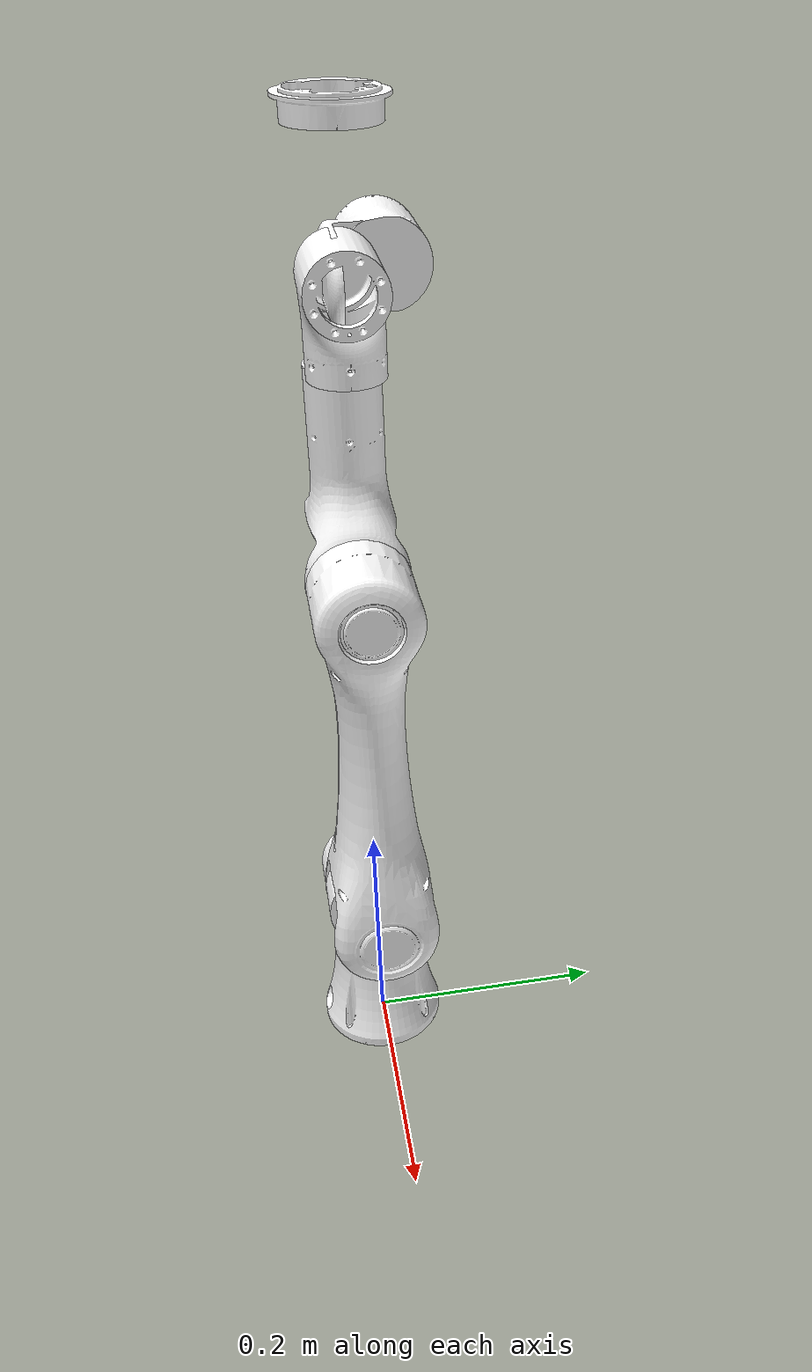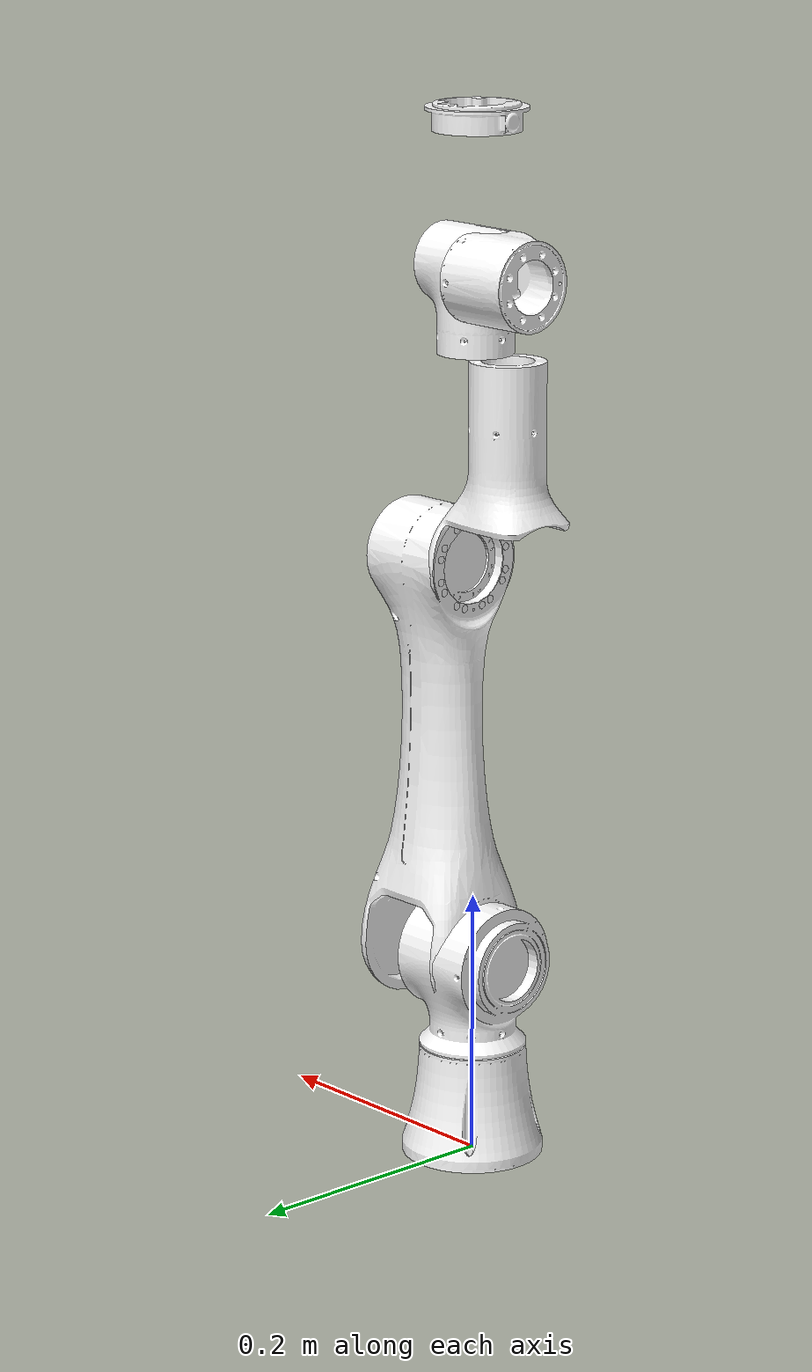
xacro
<?xml version="1.0"?>
<robot xmlns:xacro="http://www.ros.org/wiki/xacro" name="arm620">
    <xacro:arg name="initial_positions_file" default="initial_positions.yaml" />

    <!-- Import arm620 urdf file -->
    <xacro:include filename="$(find robot_description)/urdf/arm620.urdf" />

    <!-- Import control_xacro -->
    <xacro:include filename="arm620.ros2_control.xacro" />

    <xacro:arm620_ros2_control name="FakeSystem" initial_positions_file="$(arg initial_positions_file)"/>

</robot>

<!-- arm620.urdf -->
<robot
  name="arm620">
  <link
    name="base_link">
    <inertial>
      <origin
        xyz="-3.493E-05 1.9321E-08 0.041738"
        rpy="0 0 0" />
      <mass
        value="1.235" />
      <inertia
        ixx="0.00069305"
        ixy="-2.4629E-09"
        ixz="-7.7538E-07"
        iyy="0.00069224"
        iyz="1.1986E-09"
        izz="0.00059207" />
    </inertial>
    <visual>
      <origin
        xyz="0 0 0"
        rpy="0 0 0" />
      <geometry>
        <mesh
          filename="package://robot_description/meshes/arm620/base_link.STL" />
      </geometry>
      <material
        name="">
        <color
          rgba="1 1 1 1" />
      </material>
    </visual>
    <collision>
      <origin
        xyz="0 0 0"
        rpy="0 0 0" />
      <geometry>
        <mesh
          filename="package://robot_description/meshes/arm620/base_link.STL" />
      </geometry>
    </collision>
  </link>
  <link
    name="Link1">
    <inertial>
      <origin
        xyz="0.0083082 -9.0414E-07 0.066279"
        rpy="0 0 0" />
      <mass
        value="1.0225" />
      <inertia
        ixx="0.00033468"
        ixy="-1.0629E-08"
        ixz="-6.9769E-06"
        iyy="0.0002898"
        iyz="-1.0465E-08"
        izz="0.00026359" />
    </inertial>
    <visual>
      <origin
        xyz="0 0 0"
        rpy="0 0 0" />
      <geometry>
        <mesh
          filename="package://robot_description/meshes/arm620/Link1.STL" />
      </geometry>
      <material
        name="">
        <color
          rgba="1 1 1 1" />
      </material>
    </visual>
    <collision>
      <origin
        xyz="0 0 0"
        rpy="0 0 0" />
      <geometry>
        <mesh
          filename="package://robot_description/meshes/arm620/Link1.STL" />
      </geometry>
    </collision>
  </link>
  <joint
    name="joint1"
    type="revolute">
    <origin
      xyz="0 0 0.084"
      rpy="0 0 0" />
    <parent
      link="base_link" />
    <child
      link="Link1" />
    <axis
      xyz="0 0 1" />
    <limit
      lower="-2.967"
      upper="2.967"
      effort="51"
      velocity="3.14" />
  </joint>
  <link
    name="Link2">
    <inertial>
      <origin
        xyz="1.6176E-06 0.19554 -0.0019139"
        rpy="0 0 0" />
      <mass
        value="1.925" />
      <inertia
        ixx="0.0092613"
        ixy="2.9244E-08"
        ixz="-6.7107E-09"
        iyy="0.00075528"
        iyz="-1.5539E-05"
        izz="0.0090845" />
    </inertial>
    <visual>
      <origin
        xyz="0 0 0"
        rpy="0 0 0" />
      <geometry>
        <mesh
          filename="package://robot_description/meshes/arm620/Link2.STL" />
      </geometry>
      <material
        name="">
        <color
          rgba="1 1 1 1" />
      </material>
    </visual>
    <collision>
      <origin
        xyz="0 0 0"
        rpy="0 0 0" />
      <geometry>
        <mesh
          filename="package://robot_description/meshes/arm620/Link2.STL" />
      </geometry>
    </collision>
  </link>
  <joint
    name="joint2"
    type="revolute">
    <origin
      xyz="0 0 0.068718"
      rpy="1.5708 0 -1.5708" />
    <parent
      link="Link1" />
    <child
      link="Link2" />
    <axis
      xyz="0 0 -1" />
    <limit
      lower="-1.5708"
      upper="1.5708"
      effort="51"
      velocity="3.14" />
  </joint>
  <link
    name="Link3">
    <inertial>
      <origin
        xyz="1.8251E-05 -0.073691 0.010704"
        rpy="0 0 0" />
      <mass
        value="0.73" />
      <inertia
        ixx="0.00059318"
        ixy="1.2073E-07"
        ixz="1.9423E-08"
        iyy="0.00015563"
        iyz="-0.00011324"
        izz="0.00055379" />
    </inertial>
    <visual>
      <origin
        xyz="0 0 0"
        rpy="0 0 0" />
      <geometry>
        <mesh
          filename="package://robot_description/meshes/arm620/Link3.STL" />
      </geometry>
      <material
        name="">
        <color
          rgba="1 1 1 1" />
      </material>
    </visual>
    <collision>
      <origin
        xyz="0 0 0"
        rpy="0 0 0" />
      <geometry>
        <mesh
          filename="package://robot_description/meshes/arm620/Link3.STL" />
      </geometry>
    </collision>
  </link>
  <joint
    name="joint3"
    type="revolute">
    <origin
      xyz="0 0.30025 0"
      rpy="-3.1416 0 0" />
    <parent
      link="Link2" />
    <child
      link="Link3" />
    <axis
      xyz="0 0 1" />
    <limit
      lower="-1.5708"
      upper="1.5708"
      effort="51"
      velocity="3.14" />
  </joint>
  <link
    name="Link4">
    <inertial>
      <origin
        xyz="0.0059454 2.5068E-05 0.051809"
        rpy="0 0 0" />
      <mass
        value="0.5174" />
      <inertia
        ixx="0.00010342"
        ixy="-7.9433E-09"
        ixz="-7.9245E-06"
        iyy="0.0001193"
        iyz="-1.6196E-08"
        izz="8.5637E-05" />
    </inertial>
    <visual>
      <origin
        xyz="0 0 0"
        rpy="0 0 0" />
      <geometry>
        <mesh
          filename="package://robot_description/meshes/arm620/Link4.STL" />
      </geometry>
      <material
        name="">
        <color
          rgba="1 1 1 1" />
      </material>
    </visual>
    <collision>
      <origin
        xyz="0 0 0"
        rpy="0 0 0" />
      <geometry>
        <mesh
          filename= "package://robot_description/meshes/arm620/Link4.STL" />
      </geometry>
    </collision>
  </link>
  <joint
    name="joint4"
    type="revolute">
    <origin
      xyz="0 -0.15558 3.5E-05"
      rpy="1.5708 -1.5708 0" />
    <parent
      link="Link3" />
    <child
      link="Link4" />
    <axis
      xyz="0 0 1" />
    <limit
      lower="-2.967"
      upper="2.967"
      effort="9"
      velocity="3.14" />
  </joint>
  <link
    name="Link5">
    <inertial>
      <origin
        xyz="0.0095168 0.061153 1.0106E-05"
        rpy="0 0 0" />
      <mass
        value="0.7233" />
      <inertia
        ixx="0.00013586"
        ixy="3.9115E-05"
        ixz="3.3963E-08"
        iyy="0.00010055"
        iyz="-1.3885E-07"
        izz="0.0001594" />
    </inertial>
    <visual>
      <origin
        xyz="0 0 0"
        rpy="0 0 0" />
      <geometry>
        <mesh
          filename= "package://robot_description/meshes/arm620/Link5.STL" />
      </geometry>
      <material
        name="">
        <color
          rgba="1 1 1 1" />
      </material>
    </visual>
    <collision>
      <origin
        xyz="0 0 0"
        rpy="0 0 0" />
      <geometry>
        <mesh
          filename= "package://robot_description/meshes/arm620/Link5.STL" />
      </geometry>
    </collision>
  </link>
  <joint
    name="joint5"
    type="revolute">
    <origin
      xyz="-3.5E-05 1.5362E-05 0.064223"
      rpy="1.5708 0 0" />
    <parent
      link="Link4" />
    <child
      link="Link5" />
    <axis
      xyz="1 0 0" />
    <limit
      lower="-1.5708"
      upper="1.5708"
      effort="9"
      velocity="3.14" />
  </joint>
  <link
    name="Link6">
    <inertial>
      <origin
        xyz="-0.0023023 0.0016027 0.010682"
        rpy="0 0 0" />
      <mass
        value="0.0953" />
      <inertia
        ixx="1.3179E-05"
        ixy="-9.4826E-08"
        ixz="2.2437E-07"
        iyy="1.3416E-05"
        iyz="-1.8512E-07"
        izz="2.4622E-05" />
    </inertial>
    <visual>
      <origin
        xyz="0 0 0"
        rpy="0 0 0" />
      <geometry>
        <mesh
          filename= "package://robot_description/meshes/arm620/Link6.STL" />
      </geometry>
      <material
        name="">
        <color
          rgba="1 1 1 1" />
      </material>
    </visual>
    <collision>
      <origin
        xyz="0 0 0"
        rpy="0 0 0" />
      <geometry>
        <mesh
          filename= "package://robot_description/meshes/arm620/Link6.STL" />
      </geometry>
    </collision>
  </link>
  <joint
    name="joint6"
    type="revolute">
    <origin
      xyz="-0.00047523 0.095552 0"
      rpy="-1.5709 0 0" />
    <parent
      link="Link5" />
    <child
      link="Link6" />
    <axis
      xyz="0 0 1" />
    <limit
      lower="-2.967"
      upper="2.967"
      effort="9"
      velocity="3.14" />
  </joint>
  <link name="world"/>
  <joint name="base_joint" type="fixed">
      <parent link="world"/>
      <child link="base_link"/>
      <origin xyz="0 0 0" rpy="0 0 0" />
      <axis xyz="0 0 1" />
  </joint>

</robot>
